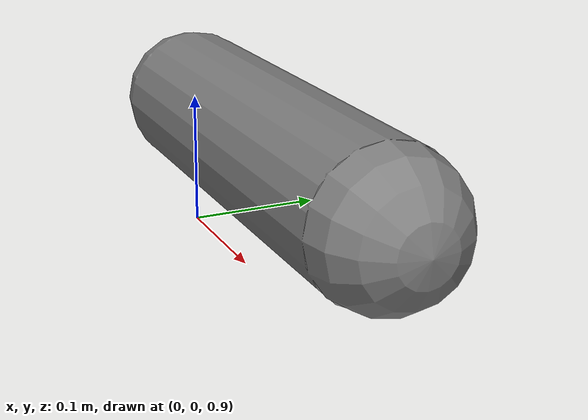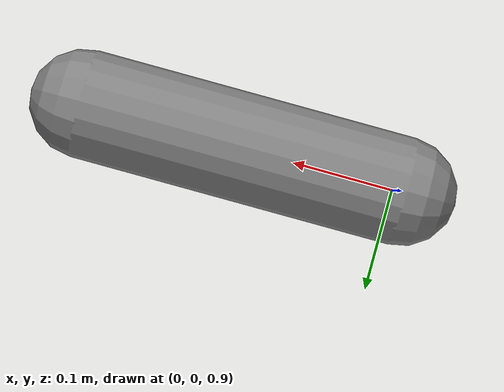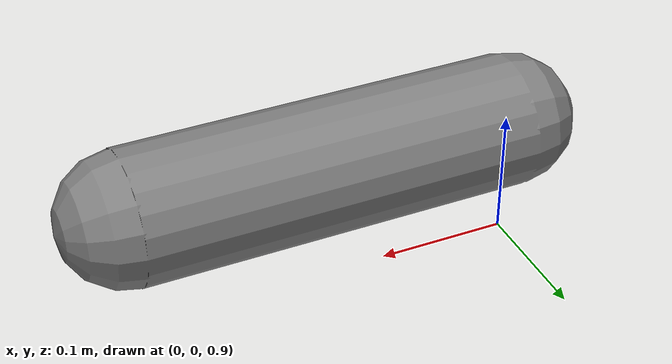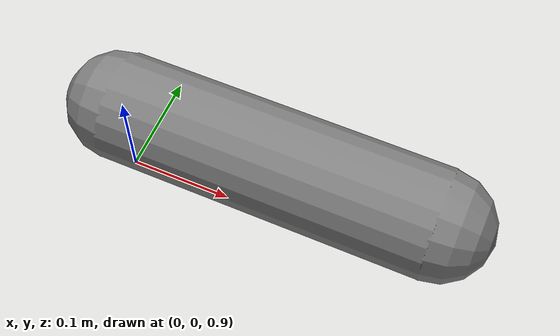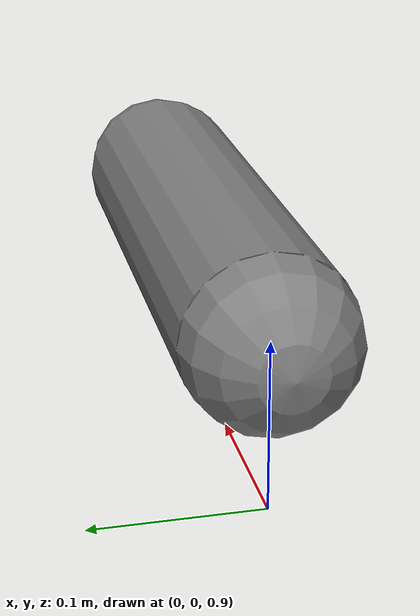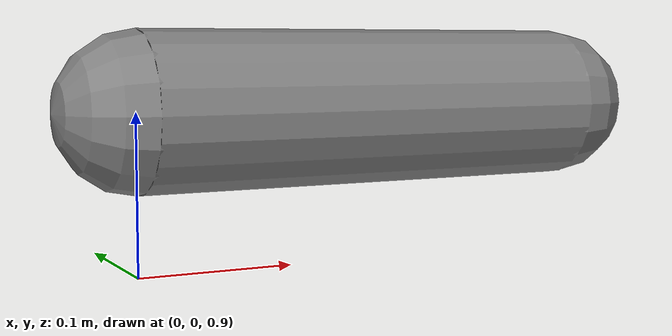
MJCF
<mujoco model="visual_statistic_flags">
  <compiler autolimits="true"/>
  <option>
    <flag contact="disable" energy="enable" gravity="disable" limit="disable"
          multiccd="enable" warmstart="disable" fwdinv="enable"/>
  </option>
  <visual>
    <global azimuth="120" elevation="-30" fovy="50" linewidth="2" glow="0.4"
            offwidth="800" offheight="600" ellipsoidinertia="true"/>
    <quality shadowsize="2048" offsamples="8" numslices="20" numstacks="20"/>
    <headlight ambient="0.2 0.2 0.2" diffuse="0.5 0.5 0.5" specular="0.1 0.1 0.1"
               active="0"/>
    <map stiffness="50" force="0.02" torque="0.05" zfar="40" znear="0.02"
         shadowclip="2" shadowscale="0.4" haze="0.2"/>
    <scale forcewidth="0.05" contactwidth="0.2" contactheight="0.05" jointwidth="0.08"
           framelength="0.5" framewidth="0.05"/>
    <rgba fog="0.5 0.5 0.5 1" force="1 0 0 1" contactpoint="0 1 0 0.5"
          joint="0.2 0.2 1 0.6" constraint="0.9 0 0.9 0.5"/>
  </visual>
  <statistic meansize="0.2" extent="4" center="0 0 0.5" meanmass="2" meaninertia="0.1"/>
  <worldbody>
    <geom name="floor" type="plane" size="2 2 0.1"/>
    <body name="b" pos="0 0 1">
      <joint name="j" type="hinge" axis="0 1 0" range="-45 45"/>
      <geom name="g" type="capsule" size="0.05" fromto="0 0 0 0.3 0 0"/>
    </body>
  </worldbody>
</mujoco>
